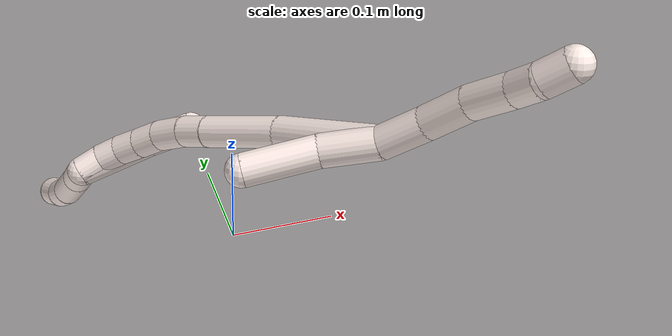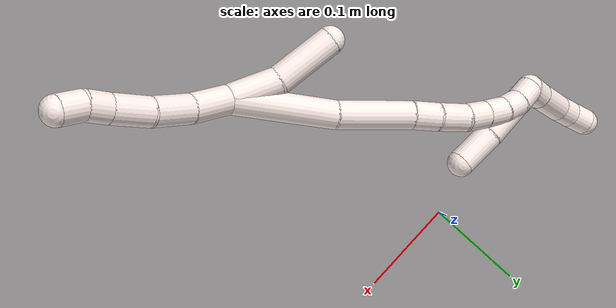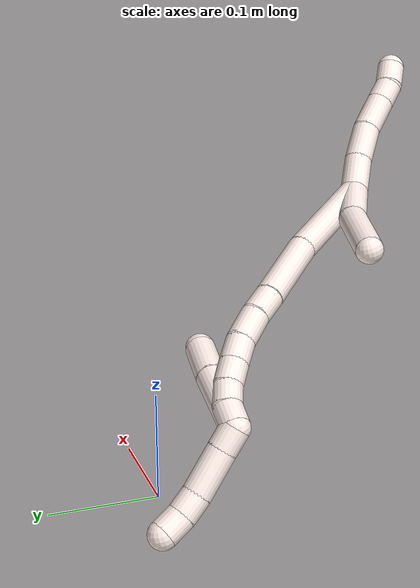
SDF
<sdf version="1.7">
 <world name="default">
  <model name="11">
   <static>0</static>
   <link name="11">
    <collision name="collision-cylinder-e_1_2_8">
     <pose>0.014692 -0.003849 0.010128 0.363204 0.935382 0.184956</pose>
     <geometry><cylinder><radius>0.0125</radius><length>0.03651</length></cylinder></geometry>
     <surface>
      <friction><ode><mu>1.16</mu><mu2>1.16</mu2><slip1>0</slip1><slip2>0</slip2></ode></friction>
      <contact><ode><kp>1e+06</kp><kd>1</kd><max_vel>0</max_vel><min_depth>0.001</min_depth></ode></contact>
     </surface>
    </collision>
    <visual name="visual-cylinder-e_1_2_8">
     <pose>0.014692 -0.003849 0.010128 0.363204 0.935382 0.184956</pose>
     <geometry><cylinder><radius>0.0125</radius><length>0.03651</length></cylinder></geometry>
     <material><ambient>1 0.933333 0.909804 1</ambient></material>
    </visual>
    <collision name="collision-cylinder-e_2_8_9">
     <pose>0.042519 -0.01383 0.030831 0.525419 0.821285 0.233116</pose>
     <geometry><cylinder><radius>0.0125</radius><length>0.035887</length></cylinder></geometry>
     <surface>
      <friction><ode><mu>1.16</mu><mu2>1.16</mu2><slip1>0</slip1><slip2>0</slip2></ode></friction>
      <contact><ode><kp>1e+06</kp><kd>1</kd><max_vel>0</max_vel><min_depth>0.001</min_depth></ode></contact>
     </surface>
    </collision>
    <visual name="visual-cylinder-e_2_8_9">
     <pose>0.042519 -0.01383 0.030831 0.525419 0.821285 0.233116</pose>
     <geometry><cylinder><radius>0.0125</radius><length>0.035887</length></cylinder></geometry>
     <material><ambient>1 0.933333 0.909804 1</ambient></material>
    </visual>
    <collision name="collision-cylinder-e_3_9_10">
     <pose>0.06836 -0.028302 0.049844 0.779652 0.819669 0.353256</pose>
     <geometry><cylinder><radius>0.0125</radius><length>0.034768</length></cylinder></geometry>
     <surface>
      <friction><ode><mu>1.16</mu><mu2>1.16</mu2><slip1>0</slip1><slip2>0</slip2></ode></friction>
      <contact><ode><kp>1e+06</kp><kd>1</kd><max_vel>0</max_vel><min_depth>0.001</min_depth></ode></contact>
     </surface>
    </collision>
    <visual name="visual-cylinder-e_3_9_10">
     <pose>0.06836 -0.028302 0.049844 0.779652 0.819669 0.353256</pose>
     <geometry><cylinder><radius>0.0125</radius><length>0.034768</length></cylinder></geometry>
     <material><ambient>1 0.933333 0.909804 1</ambient></material>
    </visual>
    <collision name="collision-cylinder-e_4_10_11">
     <pose>0.088011 -0.041954 0.06365 0.779945 0.743498 0.317795</pose>
     <geometry><cylinder><radius>0.0125</radius><length>0.020519</length></cylinder></geometry>
     <surface>
      <friction><ode><mu>1.16</mu><mu2>1.16</mu2><slip1>0</slip1><slip2>0</slip2></ode></friction>
      <contact><ode><kp>1e+06</kp><kd>1</kd><max_vel>0</max_vel><min_depth>0.001</min_depth></ode></contact>
     </surface>
    </collision>
    <visual name="visual-cylinder-e_4_10_11">
     <pose>0.088011 -0.041954 0.06365 0.779945 0.743498 0.317795</pose>
     <geometry><cylinder><radius>0.0125</radius><length>0.020519</length></cylinder></geometry>
     <material><ambient>1 0.933333 0.909804 1</ambient></material>
    </visual>
    <collision name="collision-cylinder-e_5_11_6">
     <pose>0.103568 -0.049886 0.075611 0.378486 0.881839 0.180283</pose>
     <geometry><cylinder><radius>0.0125</radius><length>0.022316</length></cylinder></geometry>
     <surface>
      <friction><ode><mu>1.16</mu><mu2>1.16</mu2><slip1>0</slip1><slip2>0</slip2></ode></friction>
      <contact><ode><kp>1e+06</kp><kd>1</kd><max_vel>0</max_vel><min_depth>0.001</min_depth></ode></contact>
     </surface>
    </collision>
    <visual name="visual-cylinder-e_5_11_6">
     <pose>0.103568 -0.049886 0.075611 0.378486 0.881839 0.180283</pose>
     <geometry><cylinder><radius>0.0125</radius><length>0.022316</length></cylinder></geometry>
     <material><ambient>1 0.933333 0.909804 1</ambient></material>
    </visual>
    <collision name="collision-cylinder-e_1_2_12">
     <pose>-0.021098 0.001455 -0.005857 -2.89812 -1.29219 2.81991</pose>
     <geometry><cylinder><radius>0.0125</radius><length>0.043888</length></cylinder></geometry>
     <surface>
      <friction><ode><mu>1.16</mu><mu2>1.16</mu2><slip1>0</slip1><slip2>0</slip2></ode></friction>
      <contact><ode><kp>1e+06</kp><kd>1</kd><max_vel>0</max_vel><min_depth>0.001</min_depth></ode></contact>
     </surface>
    </collision>
    <visual name="visual-cylinder-e_1_2_12">
     <pose>-0.021098 0.001455 -0.005857 -2.89812 -1.29219 2.81991</pose>
     <geometry><cylinder><radius>0.0125</radius><length>0.043888</length></cylinder></geometry>
     <material><ambient>1 0.933333 0.909804 1</ambient></material>
    </visual>
    <collision name="collision-cylinder-e_2_12_5">
     <pose>-0.068412 -0.003614 -0.019281 2.43004 -1.2067 -2.15246</pose>
     <geometry><cylinder><radius>0.0125</radius><length>0.056112</length></cylinder></geometry>
     <surface>
      <friction><ode><mu>1.16</mu><mu2>1.16</mu2><slip1>0</slip1><slip2>0</slip2></ode></friction>
      <contact><ode><kp>1e+06</kp><kd>1</kd><max_vel>0</max_vel><min_depth>0.001</min_depth></ode></contact>
     </surface>
    </collision>
    <visual name="visual-cylinder-e_2_12_5">
     <pose>-0.068412 -0.003614 -0.019281 2.43004 -1.2067 -2.15246</pose>
     <geometry><cylinder><radius>0.0125</radius><length>0.056112</length></cylinder></geometry>
     <material><ambient>1 0.933333 0.909804 1</ambient></material>
    </visual>
    <collision name="collision-cylinder-e_1_2_13">
     <pose>-0.038065 0.0243 -0.009098 -1.92904 -0.972498 1.30267</pose>
     <geometry><cylinder><radius>0.0125</radius><length>0.092134</length></cylinder></geometry>
     <surface>
      <friction><ode><mu>1.16</mu><mu2>1.16</mu2><slip1>0</slip1><slip2>0</slip2></ode></friction>
      <contact><ode><kp>1e+06</kp><kd>1</kd><max_vel>0</max_vel><min_depth>0.001</min_depth></ode></contact>
     </surface>
    </collision>
    <visual name="visual-cylinder-e_1_2_13">
     <pose>-0.038065 0.0243 -0.009098 -1.92904 -0.972498 1.30267</pose>
     <geometry><cylinder><radius>0.0125</radius><length>0.092134</length></cylinder></geometry>
     <material><ambient>1 0.933333 0.909804 1</ambient></material>
    </visual>
    <collision name="collision-cylinder-e_2_13_14">
     <pose>-0.106497 0.062756 -0.026338 -2.09277 -1.07737 1.60346</pose>
     <geometry><cylinder><radius>0.0125</radius><length>0.06896</length></cylinder></geometry>
     <surface>
      <friction><ode><mu>1.16</mu><mu2>1.16</mu2><slip1>0</slip1><slip2>0</slip2></ode></friction>
      <contact><ode><kp>1e+06</kp><kd>1</kd><max_vel>0</max_vel><min_depth>0.001</min_depth></ode></contact>
     </surface>
    </collision>
    <visual name="visual-cylinder-e_2_13_14">
     <pose>-0.106497 0.062756 -0.026338 -2.09277 -1.07737 1.60346</pose>
     <geometry><cylinder><radius>0.0125</radius><length>0.06896</length></cylinder></geometry>
     <material><ambient>1 0.933333 0.909804 1</ambient></material>
    </visual>
    <collision name="collision-cylinder-e_3_14_15">
     <pose>-0.147452 0.082773 -0.03764 -2.06516 -1.00944 1.49331</pose>
     <geometry><cylinder><radius>0.0125</radius><length>0.025014</length></cylinder></geometry>
     <surface>
      <friction><ode><mu>1.16</mu><mu2>1.16</mu2><slip1>0</slip1><slip2>0</slip2></ode></friction>
      <contact><ode><kp>1e+06</kp><kd>1</kd><max_vel>0</max_vel><min_depth>0.001</min_depth></ode></contact>
     </surface>
    </collision>
    <visual name="visual-cylinder-e_3_14_15">
     <pose>-0.147452 0.082773 -0.03764 -2.06516 -1.00944 1.49331</pose>
     <geometry><cylinder><radius>0.0125</radius><length>0.025014</length></cylinder></geometry>
     <material><ambient>1 0.933333 0.909804 1</ambient></material>
    </visual>
    <collision name="collision-cylinder-e_4_15_16">
     <pose>-0.169835 0.094985 -0.046163 -2.27209 -0.956846 1.68101</pose>
     <geometry><cylinder><radius>0.0125</radius><length>0.028862</length></cylinder></geometry>
     <surface>
      <friction><ode><mu>1.16</mu><mu2>1.16</mu2><slip1>0</slip1><slip2>0</slip2></ode></friction>
      <contact><ode><kp>1e+06</kp><kd>1</kd><max_vel>0</max_vel><min_depth>0.001</min_depth></ode></contact>
     </surface>
    </collision>
    <visual name="visual-cylinder-e_4_15_16">
     <pose>-0.169835 0.094985 -0.046163 -2.27209 -0.956846 1.68101</pose>
     <geometry><cylinder><radius>0.0125</radius><length>0.028862</length></cylinder></geometry>
     <material><ambient>1 0.933333 0.909804 1</ambient></material>
    </visual>
    <collision name="collision-cylinder-e_5_16_17">
     <pose>-0.190899 0.104696 -0.05703 -2.59362 -0.963044 2.15464</pose>
     <geometry><cylinder><radius>0.0125</radius><length>0.022581</length></cylinder></geometry>
     <surface>
      <friction><ode><mu>1.16</mu><mu2>1.16</mu2><slip1>0</slip1><slip2>0</slip2></ode></friction>
      <contact><ode><kp>1e+06</kp><kd>1</kd><max_vel>0</max_vel><min_depth>0.001</min_depth></ode></contact>
     </surface>
    </collision>
    <visual name="visual-cylinder-e_5_16_17">
     <pose>-0.190899 0.104696 -0.05703 -2.59362 -0.963044 2.15464</pose>
     <geometry><cylinder><radius>0.0125</radius><length>0.022581</length></cylinder></geometry>
     <material><ambient>1 0.933333 0.909804 1</ambient></material>
    </visual>
    <collision name="collision-cylinder-e_6_17_18">
     <pose>-0.209367 0.110736 -0.067666 -2.66014 -1.0089 2.30481</pose>
     <geometry><cylinder><radius>0.0125</radius><length>0.021739</length></cylinder></geometry>
     <surface>
      <friction><ode><mu>1.16</mu><mu2>1.16</mu2><slip1>0</slip1><slip2>0</slip2></ode></friction>
      <contact><ode><kp>1e+06</kp><kd>1</kd><max_vel>0</max_vel><min_depth>0.001</min_depth></ode></contact>
     </surface>
    </collision>
    <visual name="visual-cylinder-e_6_17_18">
     <pose>-0.209367 0.110736 -0.067666 -2.66014 -1.0089 2.30481</pose>
     <geometry><cylinder><radius>0.0125</radius><length>0.021739</length></cylinder></geometry>
     <material><ambient>1 0.933333 0.909804 1</ambient></material>
    </visual>
    <collision name="collision-cylinder-e_7_18_19">
     <pose>-0.227122 0.113944 -0.07799 -3.04061 -1.02324 2.96208</pose>
     <geometry><cylinder><radius>0.0125</radius><length>0.020044</length></cylinder></geometry>
     <surface>
      <friction><ode><mu>1.16</mu><mu2>1.16</mu2><slip1>0</slip1><slip2>0</slip2></ode></friction>
      <contact><ode><kp>1e+06</kp><kd>1</kd><max_vel>0</max_vel><min_depth>0.001</min_depth></ode></contact>
     </surface>
    </collision>
    <visual name="visual-cylinder-e_7_18_19">
     <pose>-0.227122 0.113944 -0.07799 -3.04061 -1.02324 2.96208</pose>
     <geometry><cylinder><radius>0.0125</radius><length>0.020044</length></cylinder></geometry>
     <material><ambient>1 0.933333 0.909804 1</ambient></material>
    </visual>
    <collision name="collision-cylinder-e_8_19_1">
     <pose>-0.243915 0.111748 -0.088795 2.6902 -0.922485 -2.27603</pose>
     <geometry><cylinder><radius>0.0125</radius><length>0.020665</length></cylinder></geometry>
     <surface>
      <friction><ode><mu>1.16</mu><mu2>1.16</mu2><slip1>0</slip1><slip2>0</slip2></ode></friction>
      <contact><ode><kp>1e+06</kp><kd>1</kd><max_vel>0</max_vel><min_depth>0.001</min_depth></ode></contact>
     </surface>
    </collision>
    <visual name="visual-cylinder-e_8_19_1">
     <pose>-0.243915 0.111748 -0.088795 2.6902 -0.922485 -2.27603</pose>
     <geometry><cylinder><radius>0.0125</radius><length>0.020665</length></cylinder></geometry>
     <material><ambient>1 0.933333 0.909804 1</ambient></material>
    </visual>
    <collision name="collision-cylinder-e_1_1_20">
     <pose>-0.256406 0.115791 -0.100822 -2.32949 -0.42826 0.936547</pose>
     <geometry><cylinder><radius>0.0125</radius><length>0.020492</length></cylinder></geometry>
     <surface>
      <friction><ode><mu>1.16</mu><mu2>1.16</mu2><slip1>0</slip1><slip2>0</slip2></ode></friction>
      <contact><ode><kp>1e+06</kp><kd>1</kd><max_vel>0</max_vel><min_depth>0.001</min_depth></ode></contact>
     </surface>
    </collision>
    <visual name="visual-cylinder-e_1_1_20">
     <pose>-0.256406 0.115791 -0.100822 -2.32949 -0.42826 0.936547</pose>
     <geometry><cylinder><radius>0.0125</radius><length>0.020492</length></cylinder></geometry>
     <material><ambient>1 0.933333 0.909804 1</ambient></material>
    </visual>
    <collision name="collision-cylinder-e_2_20_21">
     <pose>-0.269617 0.134989 -0.119418 -2.34602 -0.475167 1.04564</pose>
     <geometry><cylinder><radius>0.0125</radius><length>0.039154</length></cylinder></geometry>
     <surface>
      <friction><ode><mu>1.16</mu><mu2>1.16</mu2><slip1>0</slip1><slip2>0</slip2></ode></friction>
      <contact><ode><kp>1e+06</kp><kd>1</kd><max_vel>0</max_vel><min_depth>0.001</min_depth></ode></contact>
     </surface>
    </collision>
    <visual name="visual-cylinder-e_2_20_21">
     <pose>-0.269617 0.134989 -0.119418 -2.34602 -0.475167 1.04564</pose>
     <geometry><cylinder><radius>0.0125</radius><length>0.039154</length></cylinder></geometry>
     <material><ambient>1 0.933333 0.909804 1</ambient></material>
    </visual>
    <collision name="collision-cylinder-e_3_21_22">
     <pose>-0.284148 0.154148 -0.13654 -2.20419 -0.588995 1.07944</pose>
     <geometry><cylinder><radius>0.0125</radius><length>0.020069</length></cylinder></geometry>
     <surface>
      <friction><ode><mu>1.16</mu><mu2>1.16</mu2><slip1>0</slip1><slip2>0</slip2></ode></friction>
      <contact><ode><kp>1e+06</kp><kd>1</kd><max_vel>0</max_vel><min_depth>0.001</min_depth></ode></contact>
     </surface>
    </collision>
    <visual name="visual-cylinder-e_3_21_22">
     <pose>-0.284148 0.154148 -0.13654 -2.20419 -0.588995 1.07944</pose>
     <geometry><cylinder><radius>0.0125</radius><length>0.020069</length></cylinder></geometry>
     <material><ambient>1 0.933333 0.909804 1</ambient></material>
    </visual>
    <collision name="collision-cylinder-e_4_22_4">
     <pose>-0.296076 0.168169 -0.144523 -1.96619 -0.677037 0.972293</pose>
     <geometry><cylinder><radius>0.0125</radius><length>0.020286</length></cylinder></geometry>
     <surface>
      <friction><ode><mu>1.16</mu><mu2>1.16</mu2><slip1>0</slip1><slip2>0</slip2></ode></friction>
      <contact><ode><kp>1e+06</kp><kd>1</kd><max_vel>0</max_vel><min_depth>0.001</min_depth></ode></contact>
     </surface>
    </collision>
    <visual name="visual-cylinder-e_4_22_4">
     <pose>-0.296076 0.168169 -0.144523 -1.96619 -0.677037 0.972293</pose>
     <geometry><cylinder><radius>0.0125</radius><length>0.020286</length></cylinder></geometry>
     <material><ambient>1 0.933333 0.909804 1</ambient></material>
    </visual>
    <collision name="collision-cylinder-e_1_1_23">
     <pose>-0.225453 0.119314 -0.082192 -0.699796 1.03166 -0.408081</pose>
     <geometry><cylinder><radius>0.0125</radius><length>0.062222</length></cylinder></geometry>
     <surface>
      <friction><ode><mu>1.16</mu><mu2>1.16</mu2><slip1>0</slip1><slip2>0</slip2></ode></friction>
      <contact><ode><kp>1e+06</kp><kd>1</kd><max_vel>0</max_vel><min_depth>0.001</min_depth></ode></contact>
     </surface>
    </collision>
    <visual name="visual-cylinder-e_1_1_23">
     <pose>-0.225453 0.119314 -0.082192 -0.699796 1.03166 -0.408081</pose>
     <geometry><cylinder><radius>0.0125</radius><length>0.062222</length></cylinder></geometry>
     <material><ambient>1 0.933333 0.909804 1</ambient></material>
    </visual>
    <collision name="collision-cylinder-e_2_23_3">
     <pose>-0.181853 0.134849 -0.063373 -0.67179 1.10801 -0.425423</pose>
     <geometry><cylinder><radius>0.0125</radius><length>0.037778</length></cylinder></geometry>
     <surface>
      <friction><ode><mu>1.16</mu><mu2>1.16</mu2><slip1>0</slip1><slip2>0</slip2></ode></friction>
      <contact><ode><kp>1e+06</kp><kd>1</kd><max_vel>0</max_vel><min_depth>0.001</min_depth></ode></contact>
     </surface>
    </collision>
    <visual name="visual-cylinder-e_2_23_3">
     <pose>-0.181853 0.134849 -0.063373 -0.67179 1.10801 -0.425423</pose>
     <geometry><cylinder><radius>0.0125</radius><length>0.037778</length></cylinder></geometry>
     <material><ambient>1 0.933333 0.909804 1</ambient></material>
    </visual>
    <collision name="collision-sphere-3">
     <pose>-0.164951 0.140098 -0.056772 0 -0 0</pose>
     <geometry><sphere><radius>0.0125</radius></sphere></geometry>
     <surface>
      <friction><ode><mu>1.16</mu><mu2>1.16</mu2><slip1>0</slip1><slip2>0</slip2></ode></friction>
      <contact><ode><kp>1e+06</kp><kd>1</kd><max_vel>0</max_vel><min_depth>0.001</min_depth></ode></contact>
     </surface>
    </collision>
    <visual name="visual-sphere-3">
     <pose>-0.164951 0.140098 -0.056772 0 -0 0</pose>
     <geometry><sphere><radius>0.0125</radius></sphere></geometry>
     <material><ambient>1 0.933333 0.909804 1</ambient></material>
    </visual>
    <collision name="collision-sphere-23">
     <pose>-0.198755 0.129601 -0.069973 0 -0 0</pose>
     <geometry><sphere><radius>0.0125</radius></sphere></geometry>
     <surface>
      <friction><ode><mu>1.16</mu><mu2>1.16</mu2><slip1>0</slip1><slip2>0</slip2></ode></friction>
      <contact><ode><kp>1e+06</kp><kd>1</kd><max_vel>0</max_vel><min_depth>0.001</min_depth></ode></contact>
     </surface>
    </collision>
    <visual name="visual-sphere-23">
     <pose>-0.198755 0.129601 -0.069973 0 -0 0</pose>
     <geometry><sphere><radius>0.0125</radius></sphere></geometry>
     <material><ambient>1 0.933333 0.909804 1</ambient></material>
    </visual>
    <collision name="collision-sphere-4">
     <pose>-0.302431 0.175465 -0.147568 0 -0 0</pose>
     <geometry><sphere><radius>0.0125</radius></sphere></geometry>
     <surface>
      <friction><ode><mu>1.16</mu><mu2>1.16</mu2><slip1>0</slip1><slip2>0</slip2></ode></friction>
      <contact><ode><kp>1e+06</kp><kd>1</kd><max_vel>0</max_vel><min_depth>0.001</min_depth></ode></contact>
     </surface>
    </collision>
    <visual name="visual-sphere-4">
     <pose>-0.302431 0.175465 -0.147568 0 -0 0</pose>
     <geometry><sphere><radius>0.0125</radius></sphere></geometry>
     <material><ambient>1 0.933333 0.909804 1</ambient></material>
    </visual>
    <collision name="collision-sphere-22">
     <pose>-0.289722 0.160873 -0.141478 0 -0 0</pose>
     <geometry><sphere><radius>0.0125</radius></sphere></geometry>
     <surface>
      <friction><ode><mu>1.16</mu><mu2>1.16</mu2><slip1>0</slip1><slip2>0</slip2></ode></friction>
      <contact><ode><kp>1e+06</kp><kd>1</kd><max_vel>0</max_vel><min_depth>0.001</min_depth></ode></contact>
     </surface>
    </collision>
    <visual name="visual-sphere-22">
     <pose>-0.289722 0.160873 -0.141478 0 -0 0</pose>
     <geometry><sphere><radius>0.0125</radius></sphere></geometry>
     <material><ambient>1 0.933333 0.909804 1</ambient></material>
    </visual>
    <collision name="collision-sphere-21">
     <pose>-0.278573 0.147423 -0.131601 0 -0 0</pose>
     <geometry><sphere><radius>0.0125</radius></sphere></geometry>
     <surface>
      <friction><ode><mu>1.16</mu><mu2>1.16</mu2><slip1>0</slip1><slip2>0</slip2></ode></friction>
      <contact><ode><kp>1e+06</kp><kd>1</kd><max_vel>0</max_vel><min_depth>0.001</min_depth></ode></contact>
     </surface>
    </collision>
    <visual name="visual-sphere-21">
     <pose>-0.278573 0.147423 -0.131601 0 -0 0</pose>
     <geometry><sphere><radius>0.0125</radius></sphere></geometry>
     <material><ambient>1 0.933333 0.909804 1</ambient></material>
    </visual>
    <collision name="collision-sphere-20">
     <pose>-0.260661 0.122555 -0.107235 0 -0 0</pose>
     <geometry><sphere><radius>0.0125</radius></sphere></geometry>
     <surface>
      <friction><ode><mu>1.16</mu><mu2>1.16</mu2><slip1>0</slip1><slip2>0</slip2></ode></friction>
      <contact><ode><kp>1e+06</kp><kd>1</kd><max_vel>0</max_vel><min_depth>0.001</min_depth></ode></contact>
     </surface>
    </collision>
    <visual name="visual-sphere-20">
     <pose>-0.260661 0.122555 -0.107235 0 -0 0</pose>
     <geometry><sphere><radius>0.0125</radius></sphere></geometry>
     <material><ambient>1 0.933333 0.909804 1</ambient></material>
    </visual>
    <collision name="collision-sphere-6">
     <pose>0.112181 -0.052507 0.082202 0 -0 0</pose>
     <geometry><sphere><radius>0.0125</radius></sphere></geometry>
     <surface>
      <friction><ode><mu>1.16</mu><mu2>1.16</mu2><slip1>0</slip1><slip2>0</slip2></ode></friction>
      <contact><ode><kp>1e+06</kp><kd>1</kd><max_vel>0</max_vel><min_depth>0.001</min_depth></ode></contact>
     </surface>
    </collision>
    <visual name="visual-sphere-6">
     <pose>0.112181 -0.052507 0.082202 0 -0 0</pose>
     <geometry><sphere><radius>0.0125</radius></sphere></geometry>
     <material><ambient>1 0.933333 0.909804 1</ambient></material>
    </visual>
    <collision name="collision-sphere-11">
     <pose>0.094955 -0.047265 0.069019 0 -0 0</pose>
     <geometry><sphere><radius>0.0125</radius></sphere></geometry>
     <surface>
      <friction><ode><mu>1.16</mu><mu2>1.16</mu2><slip1>0</slip1><slip2>0</slip2></ode></friction>
      <contact><ode><kp>1e+06</kp><kd>1</kd><max_vel>0</max_vel><min_depth>0.001</min_depth></ode></contact>
     </surface>
    </collision>
    <visual name="visual-sphere-11">
     <pose>0.094955 -0.047265 0.069019 0 -0 0</pose>
     <geometry><sphere><radius>0.0125</radius></sphere></geometry>
     <material><ambient>1 0.933333 0.909804 1</ambient></material>
    </visual>
    <collision name="collision-sphere-10">
     <pose>0.081066 -0.036643 0.058281 0 -0 0</pose>
     <geometry><sphere><radius>0.0125</radius></sphere></geometry>
     <surface>
      <friction><ode><mu>1.16</mu><mu2>1.16</mu2><slip1>0</slip1><slip2>0</slip2></ode></friction>
      <contact><ode><kp>1e+06</kp><kd>1</kd><max_vel>0</max_vel><min_depth>0.001</min_depth></ode></contact>
     </surface>
    </collision>
    <visual name="visual-sphere-10">
     <pose>0.081066 -0.036643 0.058281 0 -0 0</pose>
     <geometry><sphere><radius>0.0125</radius></sphere></geometry>
     <material><ambient>1 0.933333 0.909804 1</ambient></material>
    </visual>
    <collision name="collision-sphere-9">
     <pose>0.055654 -0.019961 0.041407 0 -0 0</pose>
     <geometry><sphere><radius>0.0125</radius></sphere></geometry>
     <surface>
      <friction><ode><mu>1.16</mu><mu2>1.16</mu2><slip1>0</slip1><slip2>0</slip2></ode></friction>
      <contact><ode><kp>1e+06</kp><kd>1</kd><max_vel>0</max_vel><min_depth>0.001</min_depth></ode></contact>
     </surface>
    </collision>
    <visual name="visual-sphere-9">
     <pose>0.055654 -0.019961 0.041407 0 -0 0</pose>
     <geometry><sphere><radius>0.0125</radius></sphere></geometry>
     <material><ambient>1 0.933333 0.909804 1</ambient></material>
    </visual>
    <collision name="collision-sphere-2">
     <geometry><sphere><radius>0.0125</radius></sphere></geometry>
     <surface>
      <friction><ode><mu>1.16</mu><mu2>1.16</mu2><slip1>0</slip1><slip2>0</slip2></ode></friction>
      <contact><ode><kp>1e+06</kp><kd>1</kd><max_vel>0</max_vel><min_depth>0.001</min_depth></ode></contact>
     </surface>
    </collision>
    <visual name="visual-sphere-2">
     <geometry><sphere><radius>0.0125</radius></sphere></geometry>
     <material><ambient>1 0.933333 0.909804 1</ambient></material>
    </visual>
    <collision name="collision-sphere-19">
     <pose>-0.235679 0.11447 -0.083181 0 -0 0</pose>
     <geometry><sphere><radius>0.0125</radius></sphere></geometry>
     <surface>
      <friction><ode><mu>1.16</mu><mu2>1.16</mu2><slip1>0</slip1><slip2>0</slip2></ode></friction>
      <contact><ode><kp>1e+06</kp><kd>1</kd><max_vel>0</max_vel><min_depth>0.001</min_depth></ode></contact>
     </surface>
    </collision>
    <visual name="visual-sphere-19">
     <pose>-0.235679 0.11447 -0.083181 0 -0 0</pose>
     <geometry><sphere><radius>0.0125</radius></sphere></geometry>
     <material><ambient>1 0.933333 0.909804 1</ambient></material>
    </visual>
    <collision name="collision-sphere-8">
     <pose>0.029384 -0.007698 0.020255 0 -0 0</pose>
     <geometry><sphere><radius>0.0125</radius></sphere></geometry>
     <surface>
      <friction><ode><mu>1.16</mu><mu2>1.16</mu2><slip1>0</slip1><slip2>0</slip2></ode></friction>
      <contact><ode><kp>1e+06</kp><kd>1</kd><max_vel>0</max_vel><min_depth>0.001</min_depth></ode></contact>
     </surface>
    </collision>
    <visual name="visual-sphere-8">
     <pose>0.029384 -0.007698 0.020255 0 -0 0</pose>
     <geometry><sphere><radius>0.0125</radius></sphere></geometry>
     <material><ambient>1 0.933333 0.909804 1</ambient></material>
    </visual>
    <collision name="collision-sphere-12">
     <pose>-0.042196 0.00291 -0.011714 0 -0 0</pose>
     <geometry><sphere><radius>0.0125</radius></sphere></geometry>
     <surface>
      <friction><ode><mu>1.16</mu><mu2>1.16</mu2><slip1>0</slip1><slip2>0</slip2></ode></friction>
      <contact><ode><kp>1e+06</kp><kd>1</kd><max_vel>0</max_vel><min_depth>0.001</min_depth></ode></contact>
     </surface>
    </collision>
    <visual name="visual-sphere-12">
     <pose>-0.042196 0.00291 -0.011714 0 -0 0</pose>
     <geometry><sphere><radius>0.0125</radius></sphere></geometry>
     <material><ambient>1 0.933333 0.909804 1</ambient></material>
    </visual>
    <collision name="collision-sphere-5">
     <pose>-0.094629 -0.010138 -0.026847 0 -0 0</pose>
     <geometry><sphere><radius>0.0125</radius></sphere></geometry>
     <surface>
      <friction><ode><mu>1.16</mu><mu2>1.16</mu2><slip1>0</slip1><slip2>0</slip2></ode></friction>
      <contact><ode><kp>1e+06</kp><kd>1</kd><max_vel>0</max_vel><min_depth>0.001</min_depth></ode></contact>
     </surface>
    </collision>
    <visual name="visual-sphere-5">
     <pose>-0.094629 -0.010138 -0.026847 0 -0 0</pose>
     <geometry><sphere><radius>0.0125</radius></sphere></geometry>
     <material><ambient>1 0.933333 0.909804 1</ambient></material>
    </visual>
    <collision name="collision-sphere-13">
     <pose>-0.07613 0.048599 -0.018196 0 -0 0</pose>
     <geometry><sphere><radius>0.0125</radius></sphere></geometry>
     <surface>
      <friction><ode><mu>1.16</mu><mu2>1.16</mu2><slip1>0</slip1><slip2>0</slip2></ode></friction>
      <contact><ode><kp>1e+06</kp><kd>1</kd><max_vel>0</max_vel><min_depth>0.001</min_depth></ode></contact>
     </surface>
    </collision>
    <visual name="visual-sphere-13">
     <pose>-0.07613 0.048599 -0.018196 0 -0 0</pose>
     <geometry><sphere><radius>0.0125</radius></sphere></geometry>
     <material><ambient>1 0.933333 0.909804 1</ambient></material>
    </visual>
    <collision name="collision-sphere-14">
     <pose>-0.136864 0.076912 -0.034481 0 -0 0</pose>
     <geometry><sphere><radius>0.0125</radius></sphere></geometry>
     <surface>
      <friction><ode><mu>1.16</mu><mu2>1.16</mu2><slip1>0</slip1><slip2>0</slip2></ode></friction>
      <contact><ode><kp>1e+06</kp><kd>1</kd><max_vel>0</max_vel><min_depth>0.001</min_depth></ode></contact>
     </surface>
    </collision>
    <visual name="visual-sphere-14">
     <pose>-0.136864 0.076912 -0.034481 0 -0 0</pose>
     <geometry><sphere><radius>0.0125</radius></sphere></geometry>
     <material><ambient>1 0.933333 0.909804 1</ambient></material>
    </visual>
    <collision name="collision-sphere-15">
     <pose>-0.158039 0.088633 -0.040799 0 -0 0</pose>
     <geometry><sphere><radius>0.0125</radius></sphere></geometry>
     <surface>
      <friction><ode><mu>1.16</mu><mu2>1.16</mu2><slip1>0</slip1><slip2>0</slip2></ode></friction>
      <contact><ode><kp>1e+06</kp><kd>1</kd><max_vel>0</max_vel><min_depth>0.001</min_depth></ode></contact>
     </surface>
    </collision>
    <visual name="visual-sphere-15">
     <pose>-0.158039 0.088633 -0.040799 0 -0 0</pose>
     <geometry><sphere><radius>0.0125</radius></sphere></geometry>
     <material><ambient>1 0.933333 0.909804 1</ambient></material>
    </visual>
    <collision name="collision-sphere-16">
     <pose>-0.181631 0.101337 -0.051527 0 -0 0</pose>
     <geometry><sphere><radius>0.0125</radius></sphere></geometry>
     <surface>
      <friction><ode><mu>1.16</mu><mu2>1.16</mu2><slip1>0</slip1><slip2>0</slip2></ode></friction>
      <contact><ode><kp>1e+06</kp><kd>1</kd><max_vel>0</max_vel><min_depth>0.001</min_depth></ode></contact>
     </surface>
    </collision>
    <visual name="visual-sphere-16">
     <pose>-0.181631 0.101337 -0.051527 0 -0 0</pose>
     <geometry><sphere><radius>0.0125</radius></sphere></geometry>
     <material><ambient>1 0.933333 0.909804 1</ambient></material>
    </visual>
    <collision name="collision-sphere-17">
     <pose>-0.200168 0.108054 -0.062533 0 -0 0</pose>
     <geometry><sphere><radius>0.0125</radius></sphere></geometry>
     <surface>
      <friction><ode><mu>1.16</mu><mu2>1.16</mu2><slip1>0</slip1><slip2>0</slip2></ode></friction>
      <contact><ode><kp>1e+06</kp><kd>1</kd><max_vel>0</max_vel><min_depth>0.001</min_depth></ode></contact>
     </surface>
    </collision>
    <visual name="visual-sphere-17">
     <pose>-0.200168 0.108054 -0.062533 0 -0 0</pose>
     <geometry><sphere><radius>0.0125</radius></sphere></geometry>
     <material><ambient>1 0.933333 0.909804 1</ambient></material>
    </visual>
    <collision name="collision-sphere-18">
     <pose>-0.218565 0.113418 -0.072799 0 -0 0</pose>
     <geometry><sphere><radius>0.0125</radius></sphere></geometry>
     <surface>
      <friction><ode><mu>1.16</mu><mu2>1.16</mu2><slip1>0</slip1><slip2>0</slip2></ode></friction>
      <contact><ode><kp>1e+06</kp><kd>1</kd><max_vel>0</max_vel><min_depth>0.001</min_depth></ode></contact>
     </surface>
    </collision>
    <visual name="visual-sphere-18">
     <pose>-0.218565 0.113418 -0.072799 0 -0 0</pose>
     <geometry><sphere><radius>0.0125</radius></sphere></geometry>
     <material><ambient>1 0.933333 0.909804 1</ambient></material>
    </visual>
    <collision name="collision-sphere-1">
     <pose>-0.252151 0.109027 -0.09441 0 -0 0</pose>
     <geometry><sphere><radius>0.0125</radius></sphere></geometry>
     <surface>
      <friction><ode><mu>1.16</mu><mu2>1.16</mu2><slip1>0</slip1><slip2>0</slip2></ode></friction>
      <contact><ode><kp>1e+06</kp><kd>1</kd><max_vel>0</max_vel><min_depth>0.001</min_depth></ode></contact>
     </surface>
    </collision>
    <visual name="visual-sphere-1">
     <pose>-0.252151 0.109027 -0.09441 0 -0 0</pose>
     <geometry><sphere><radius>0.0125</radius></sphere></geometry>
     <material><ambient>1 0.933333 0.909804 1</ambient></material>
    </visual>
    <inertial>
     <pose>-0.11003 0.058254 -0.034858 0 -0 0</pose>
     <mass>0.75</mass>
     <inertia><ixx>7.3e-05</ixx><ixy>0</ixy><ixz>0</ixz><iyy>0.000214</iyy><iyz>0</iyz><izz>2.1e-05</izz></inertia>
    </inertial>
   </link>
   <pose>0.05179 -0.207028 0.251391 -0.270139 -0.007206 -0.456865</pose>
  </model>
 </world>
</sdf>
